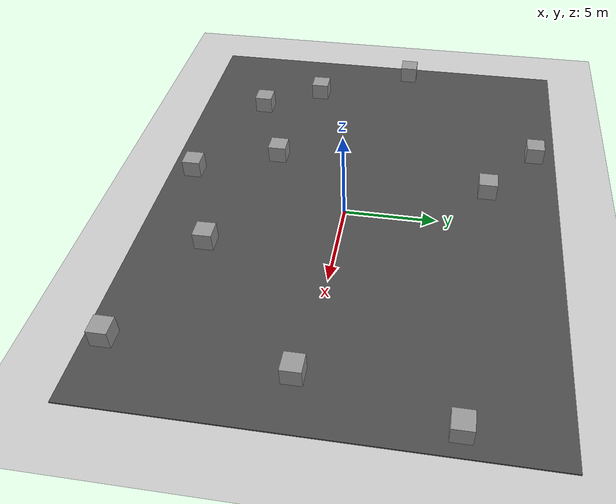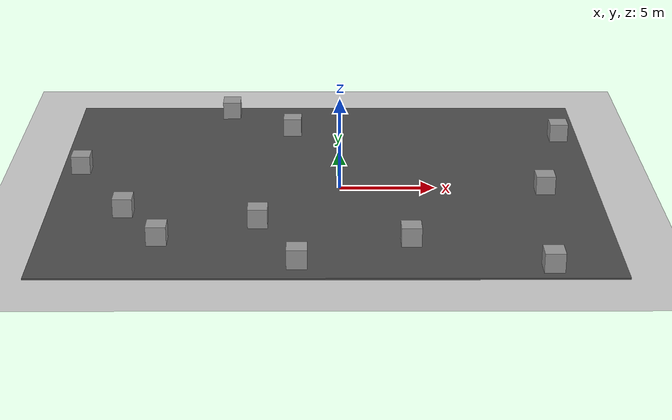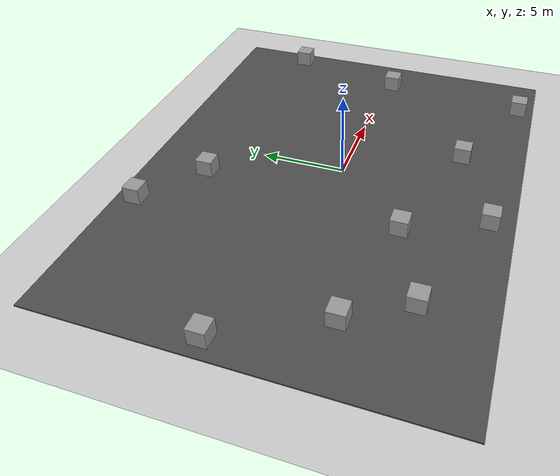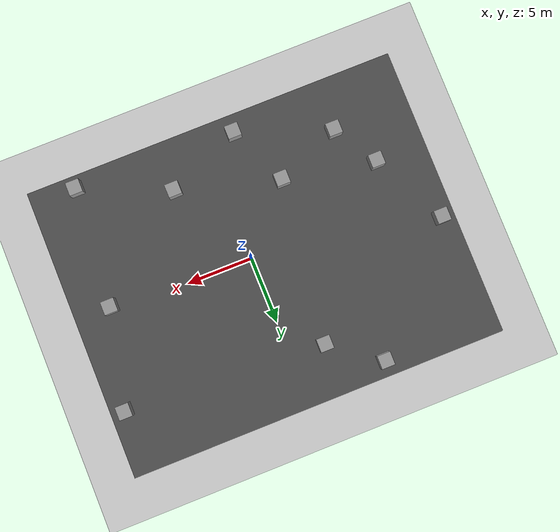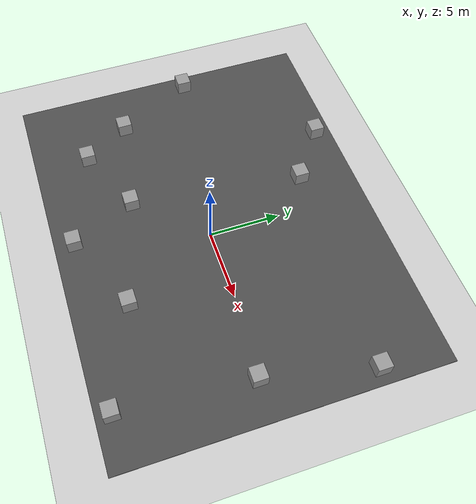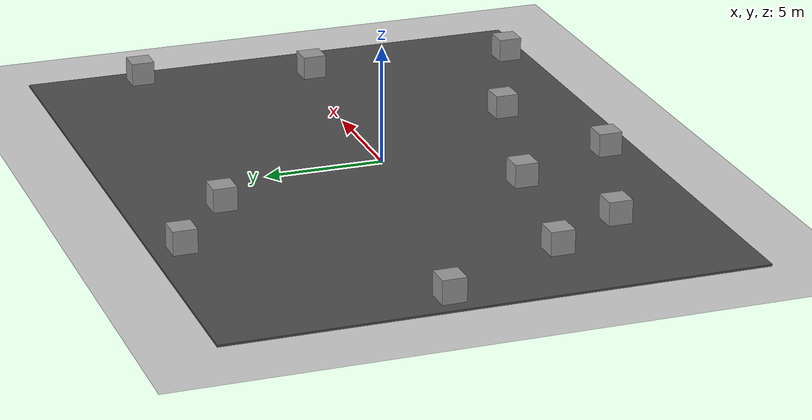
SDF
<sdf version="1.7">
 <world name="default">
  <light name="sun" type="directional">
   <pose>0 0 100 0 -0 0</pose>
   <diffuse>0.8 0.8 0.8 1</diffuse>
   <specular>0.1 0.1 0.1 1</specular>
   <attenuation>
    <range>1000</range>
    <constant>0.9</constant>
    <linear>0.01</linear>
    <quadratic>0.001</quadratic>
   </attenuation>
   <direction>-0.5 0.5 -1</direction>
   <spot><inner_angle>0</inner_angle><outer_angle>0</outer_angle><falloff>0</falloff></spot>
  </light>
  <model name="ground_plane">
   <static>1</static>
   <link name="link">
    <collision name="collision">
     <geometry><plane><normal>0 0 1</normal><size>100 100</size></plane></geometry>
     <surface><friction><ode><mu>100</mu><mu2>50</mu2></ode></friction></surface>
    </collision>
    <visual name="visual">
     <cast_shadows>0</cast_shadows>
     <geometry><plane><normal>0 0 1</normal><size>100 100</size></plane></geometry>
     <material>
      <script><uri>file://media/materials/scripts/gazebo.material</uri><name>Gazebo/Grey</name></script>
     </material>
    </visual>
   </link>
  </model>
  <gravity>0 0 -9.8</gravity>
  <magnetic_field>6e-06 2.3e-05 -4.2e-05</magnetic_field>
  <atmosphere type="adiabatic"/>
  <physics name="default_physics" default="0" type="ode">
   <max_step_size>0.001</max_step_size>
   <real_time_factor>1</real_time_factor>
   <real_time_update_rate>1000</real_time_update_rate>
  </physics>
  <scene><ambient>0.4 0.4 0.4 1</ambient><background>0.7 0.7 0.7 1</background><shadows>1</shadows></scene>
  <spherical_coordinates>
   <surface_model>EARTH_WGS84</surface_model>
   <latitude_deg>0</latitude_deg>
   <longitude_deg>0</longitude_deg>
   <elevation>0</elevation>
   <heading_deg>0</heading_deg>
  </spherical_coordinates>
  <model name="asphalt_plane">
   <static>1</static>
   <link name="link">
    <collision name="collision"><geometry><box><size>28.54 22.04 0.1</size></box></geometry></collision>
    <visual name="visual">
     <cast_shadows>0</cast_shadows>
     <geometry><box><size>28.54 22.04 0.1</size></box></geometry>
     <material>
      <script>
       <uri>model://asphalt_plane/materials/scripts</uri>
       <uri>model://asphalt_plane/materials/textures</uri>
       <name>vrc/asphalt</name>
      </script>
     </material>
    </visual>
   </link>
   <pose>-0.719505 0.551979 0 0 -0 0</pose>
  </model>
  <audio><device>default</device></audio>
  <model name="unit_box_clone">
   <pose>-9.02989 -6.55585 0.549995 1e-05 0 3.5e-05</pose>
   <link name="link">
    <inertial>
     <mass>1</mass>
     <inertia>
      <ixx>0.166667</ixx>
      <ixy>0</ixy>
      <ixz>0</ixz>
      <iyy>0.166667</iyy>
      <iyz>0</iyz>
      <izz>0.166667</izz>
     </inertia>
    </inertial>
    <collision name="collision"><geometry><box><size>1 1 1</size></box></geometry></collision>
    <visual name="visual">
     <geometry><box><size>1 1 1</size></box></geometry>
     <material>
      <script><name>Gazebo/Grey</name><uri>file://media/materials/scripts/gazebo.material</uri></script>
     </material>
    </visual>
   </link>
  </model>
  <model name="unit_box_clone_0">
   <pose>-2.13903 -9.08249 0.550002 -4e-06 -0 2.7e-05</pose>
   <link name="link">
    <inertial>
     <mass>1</mass>
     <inertia>
      <ixx>0.166667</ixx>
      <ixy>0</ixy>
      <ixz>0</ixz>
      <iyy>0.166667</iyy>
      <iyz>0</iyz>
      <izz>0.166667</izz>
     </inertia>
    </inertial>
    <collision name="collision"><geometry><box><size>1 1 1</size></box></geometry></collision>
    <visual name="visual">
     <geometry><box><size>1 1 1</size></box></geometry>
     <material>
      <script><name>Gazebo/Grey</name><uri>file://media/materials/scripts/gazebo.material</uri></script>
     </material>
    </visual>
    <gravity>0</gravity>
   </link>
   <plugin name="box_movement_plugin" filename="libbox_movement_plugin.so">
    <direction>y</direction>
    <distance>3.0</distance>
    <speed>0.03</speed>
    <delay>2.0</delay>
   </plugin>
  </model>
  <model name="unit_box_clone_2">
   <pose>10.7422 -0.49705 0.55 0 -0 3.3e-05</pose>
   <link name="link">
    <inertial>
     <mass>1</mass>
     <inertia>
      <ixx>0.166667</ixx>
      <ixy>0</ixy>
      <ixz>0</ixz>
      <iyy>0.166667</iyy>
      <iyz>0</iyz>
      <izz>0.166667</izz>
     </inertia>
    </inertial>
    <collision name="collision"><geometry><box><size>1 1 1</size></box></geometry></collision>
    <visual name="visual">
     <geometry><box><size>1 1 1</size></box></geometry>
     <material>
      <script><name>Gazebo/Grey</name><uri>file://media/materials/scripts/gazebo.material</uri></script>
     </material>
    </visual>
    <gravity>0</gravity>
   </link>
   <plugin name="box_movement_plugin" filename="libbox_movement_plugin.so">
    <direction>y</direction>
    <distance>3.0</distance>
    <speed>0.03</speed>
    <delay>1.0</delay>
   </plugin>
  </model>
  <model name="unit_box_clone_5">
   <pose>10.03 -9.4525 0.550002 -4e-06 0 -0.001074</pose>
   <link name="link">
    <inertial>
     <mass>1</mass>
     <inertia>
      <ixx>0.166667</ixx>
      <ixy>0</ixy>
      <ixz>0</ixz>
      <iyy>0.166667</iyy>
      <iyz>0</iyz>
      <izz>0.166667</izz>
     </inertia>
    </inertial>
    <collision name="collision"><geometry><box><size>1 1 1</size></box></geometry></collision>
    <visual name="visual">
     <geometry><box><size>1 1 1</size></box></geometry>
     <material>
      <script><name>Gazebo/Grey</name><uri>file://media/materials/scripts/gazebo.material</uri></script>
     </material>
    </visual>
   </link>
  </model>
  <model name="unit_box_clone_9">
   <pose>12.4219 6.83819 0.550002 -4e-06 0 2.9e-05</pose>
   <link name="link">
    <inertial>
     <mass>1</mass>
     <inertia>
      <ixx>0.166667</ixx>
      <ixy>0</ixy>
      <ixz>0</ixz>
      <iyy>0.166667</iyy>
      <iyz>0</iyz>
      <izz>0.166667</izz>
     </inertia>
    </inertial>
    <collision name="collision"><geometry><box><size>1 1 1</size></box></geometry></collision>
    <visual name="visual">
     <geometry><box><size>1 1 1</size></box></geometry>
     <material>
      <script><name>Gazebo/Grey</name><uri>file://media/materials/scripts/gazebo.material</uri></script>
     </material>
    </visual>
   </link>
  </model>
  <model name="unit_box_clone_11">
   <pose>-2.61677 7.65171 0.549995 1e-05 -0 2.7e-05</pose>
   <link name="link">
    <inertial>
     <mass>1</mass>
     <inertia>
      <ixx>0.166667</ixx>
      <ixy>0</ixy>
      <ixz>0</ixz>
      <iyy>0.166667</iyy>
      <iyz>0</iyz>
      <izz>0.166667</izz>
     </inertia>
    </inertial>
    <collision name="collision"><geometry><box><size>1 1 1</size></box></geometry></collision>
    <visual name="visual">
     <geometry><box><size>1 1 1</size></box></geometry>
     <material>
      <script><name>Gazebo/Grey</name><uri>file://media/materials/scripts/gazebo.material</uri></script>
     </material>
    </visual>
   </link>
  </model>
  <model name="unit_box_clone_12">
   <pose>-6.20181 10.3429 0.549995 1e-05 -0 2.7e-05</pose>
   <link name="link">
    <inertial>
     <mass>1</mass>
     <inertia>
      <ixx>0.166667</ixx>
      <ixy>0</ixy>
      <ixz>0</ixz>
      <iyy>0.166667</iyy>
      <iyz>0</iyz>
      <izz>0.166667</izz>
     </inertia>
    </inertial>
    <collision name="collision"><geometry><box><size>1 1 1</size></box></geometry></collision>
    <visual name="visual">
     <geometry><box><size>1 1 1</size></box></geometry>
     <material>
      <script><name>Gazebo/Grey</name><uri>file://media/materials/scripts/gazebo.material</uri></script>
     </material>
    </visual>
   </link>
  </model>
  <model name="unit_box_clone_14">
   <pose>-13.9085 2.23419 0.550002 -4e-06 -0 1.6e-05</pose>
   <link name="link">
    <inertial>
     <mass>1</mass>
     <inertia>
      <ixx>0.166667</ixx>
      <ixy>0</ixy>
      <ixz>0</ixz>
      <iyy>0.166667</iyy>
      <iyz>0</iyz>
      <izz>0.166667</izz>
     </inertia>
    </inertial>
    <collision name="collision"><geometry><box><size>1 1 1</size></box></geometry></collision>
    <visual name="visual">
     <geometry><box><size>1 1 1</size></box></geometry>
     <material>
      <script><name>Gazebo/Grey</name><uri>file://media/materials/scripts/gazebo.material</uri></script>
     </material>
    </visual>
    <gravity>0</gravity>
   </link>
   <plugin name="box_movement_plugin" filename="libbox_movement_plugin.so">
    <direction>x</direction>
    <distance>2.0</distance>
    <speed>0.03</speed>
    <delay>0.5</delay>
   </plugin>
  </model>
  <model name="unit_box_clone_16">
   <pose>-11.0431 -3.28245 0.550002 -4e-06 -0 2.1e-05</pose>
   <link name="link">
    <inertial>
     <mass>1</mass>
     <inertia>
      <ixx>0.166667</ixx>
      <ixy>0</ixy>
      <ixz>0</ixz>
      <iyy>0.166667</iyy>
      <iyz>0</iyz>
      <izz>0.166667</izz>
     </inertia>
    </inertial>
    <collision name="collision"><geometry><box><size>1 1 1</size></box></geometry></collision>
    <visual name="visual">
     <geometry><box><size>1 1 1</size></box></geometry>
     <material>
      <script><name>Gazebo/Grey</name><uri>file://media/materials/scripts/gazebo.material</uri></script>
     </material>
    </visual>
   </link>
  </model>
  <model name="unit_box_clone_clone">
   <pose>-4.15813 -4.55214 0.550002 -4e-06 -0 3.2e-05</pose>
   <link name="link">
    <inertial>
     <mass>1</mass>
     <inertia>
      <ixx>0.166667</ixx>
      <ixy>0</ixy>
      <ixz>0</ixz>
      <iyy>0.166667</iyy>
      <iyz>0</iyz>
      <izz>0.166667</izz>
     </inertia>
    </inertial>
    <collision name="collision"><geometry><box><size>1 1 1</size></box></geometry></collision>
    <visual name="visual">
     <geometry><box><size>1 1 1</size></box></geometry>
     <material>
      <script><name>Gazebo/Grey</name><uri>file://media/materials/scripts/gazebo.material</uri></script>
     </material>
    </visual>
   </link>
  </model>
  <model name="unit_box_clone_clone_clone">
   <pose>3.42775 -6.6925 0.55 0 -0 0.009917</pose>
   <link name="link">
    <inertial>
     <mass>1</mass>
     <inertia>
      <ixx>0.166667</ixx>
      <ixy>0</ixy>
      <ixz>0</ixz>
      <iyy>0.166667</iyy>
      <iyz>0</iyz>
      <izz>0.166667</izz>
     </inertia>
    </inertial>
    <collision name="collision"><geometry><box><size>1 1 1</size></box></geometry></collision>
    <visual name="visual">
     <geometry><box><size>1 1 1</size></box></geometry>
     <material>
      <script><name>Gazebo/Grey</name><uri>file://media/materials/scripts/gazebo.material</uri></script>
     </material>
    </visual>
   </link>
  </model>
 </world>
</sdf>
